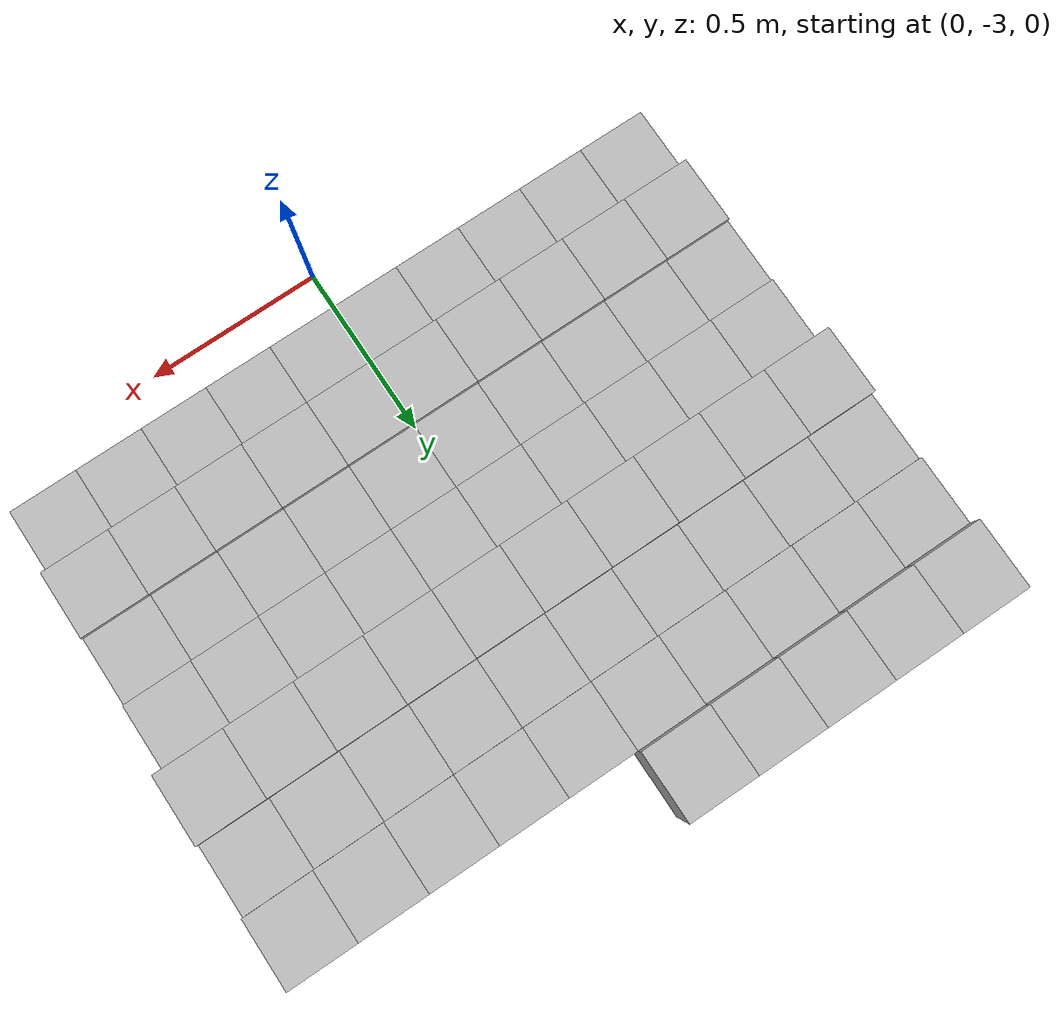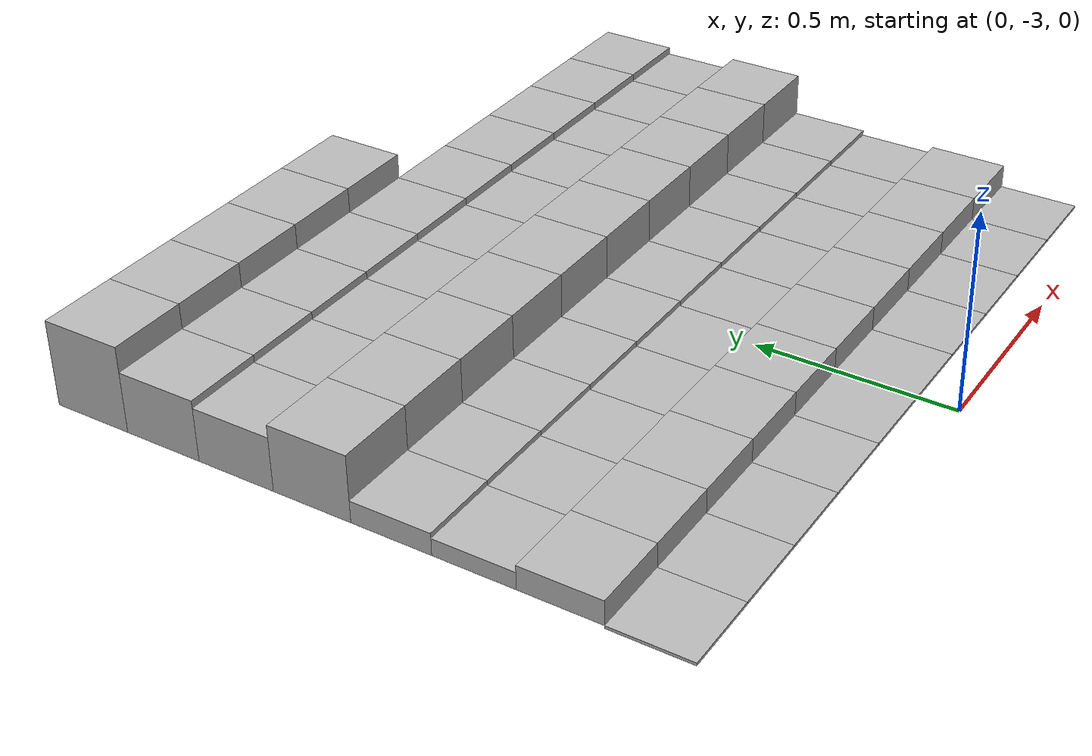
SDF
<sdf version="1.6">
 <model name="Terrain">
  <static>true</static>
  <link name="box_7_0">
   <pose>-0.9 -1.4 0.109469746065 0 0 0</pose>
   <inertial>
    <mass>1.0</mass>
    <inertia><ixx>0.0</ixx><ixy>0.0</ixy><ixz>0.0</ixz><iyy>0.0</iyy><iyz>0.0</iyz><izz>0.0</izz></inertia>
   </inertial>
   <collision name="collision"><geometry><box><size>0.2 0.2 0.21893949213</size></box></geometry></collision>
   <visual name="visual"><geometry><box><size>0.2 0.2 0.21893949213</size></box></geometry></visual>
  </link>
  <link name="box_7_1">
   <pose>-0.7 -1.4 0.109469746065 0 0 0</pose>
   <inertial>
    <mass>1.0</mass>
    <inertia><ixx>0.0</ixx><ixy>0.0</ixy><ixz>0.0</ixz><iyy>0.0</iyy><iyz>0.0</iyz><izz>0.0</izz></inertia>
   </inertial>
   <collision name="collision"><geometry><box><size>0.2 0.2 0.21893949213</size></box></geometry></collision>
   <visual name="visual"><geometry><box><size>0.2 0.2 0.21893949213</size></box></geometry></visual>
  </link>
  <link name="box_7_2">
   <pose>-0.5 -1.4 0.109469746065 0 0 0</pose>
   <inertial>
    <mass>1.0</mass>
    <inertia><ixx>0.0</ixx><ixy>0.0</ixy><ixz>0.0</ixz><iyy>0.0</iyy><iyz>0.0</iyz><izz>0.0</izz></inertia>
   </inertial>
   <collision name="collision"><geometry><box><size>0.2 0.2 0.21893949213</size></box></geometry></collision>
   <visual name="visual"><geometry><box><size>0.2 0.2 0.21893949213</size></box></geometry></visual>
  </link>
  <link name="box_7_3">
   <pose>-0.3 -1.4 0.109469746065 0 0 0</pose>
   <inertial>
    <mass>1.0</mass>
    <inertia><ixx>0.0</ixx><ixy>0.0</ixy><ixz>0.0</ixz><iyy>0.0</iyy><iyz>0.0</iyz><izz>0.0</izz></inertia>
   </inertial>
   <collision name="collision"><geometry><box><size>0.2 0.2 0.21893949213</size></box></geometry></collision>
   <visual name="visual"><geometry><box><size>0.2 0.2 0.21893949213</size></box></geometry></visual>
  </link>
  <link name="box_7_4">
   <pose>-0.1 -1.4 0.109469746065 0 0 0</pose>
   <inertial>
    <mass>1.0</mass>
    <inertia><ixx>0.0</ixx><ixy>0.0</ixy><ixz>0.0</ixz><iyy>0.0</iyy><iyz>0.0</iyz><izz>0.0</izz></inertia>
   </inertial>
   <collision name="collision"><geometry><box><size>0.2 0.2 0.21893949213</size></box></geometry></collision>
   <visual name="visual"><geometry><box><size>0.2 0.2 0.21893949213</size></box></geometry></visual>
  </link>
  <link name="box_8_0">
   <pose>-0.9 -1.6 0.0772948517465 0 0 0</pose>
   <inertial>
    <mass>1.0</mass>
    <inertia><ixx>0.0</ixx><ixy>0.0</ixy><ixz>0.0</ixz><iyy>0.0</iyy><iyz>0.0</iyz><izz>0.0</izz></inertia>
   </inertial>
   <collision name="collision"><geometry><box><size>0.2 0.2 0.154589703493</size></box></geometry></collision>
   <visual name="visual"><geometry><box><size>0.2 0.2 0.154589703493</size></box></geometry></visual>
  </link>
  <link name="box_8_1">
   <pose>-0.7 -1.6 0.0772948517465 0 0 0</pose>
   <inertial>
    <mass>1.0</mass>
    <inertia><ixx>0.0</ixx><ixy>0.0</ixy><ixz>0.0</ixz><iyy>0.0</iyy><iyz>0.0</iyz><izz>0.0</izz></inertia>
   </inertial>
   <collision name="collision"><geometry><box><size>0.2 0.2 0.154589703493</size></box></geometry></collision>
   <visual name="visual"><geometry><box><size>0.2 0.2 0.154589703493</size></box></geometry></visual>
  </link>
  <link name="box_8_2">
   <pose>-0.5 -1.6 0.0772948517465 0 0 0</pose>
   <inertial>
    <mass>1.0</mass>
    <inertia><ixx>0.0</ixx><ixy>0.0</ixy><ixz>0.0</ixz><iyy>0.0</iyy><iyz>0.0</iyz><izz>0.0</izz></inertia>
   </inertial>
   <collision name="collision"><geometry><box><size>0.2 0.2 0.154589703493</size></box></geometry></collision>
   <visual name="visual"><geometry><box><size>0.2 0.2 0.154589703493</size></box></geometry></visual>
  </link>
  <link name="box_8_3">
   <pose>-0.3 -1.6 0.0772948517465 0 0 0</pose>
   <inertial>
    <mass>1.0</mass>
    <inertia><ixx>0.0</ixx><ixy>0.0</ixy><ixz>0.0</ixz><iyy>0.0</iyy><iyz>0.0</iyz><izz>0.0</izz></inertia>
   </inertial>
   <collision name="collision"><geometry><box><size>0.2 0.2 0.154589703493</size></box></geometry></collision>
   <visual name="visual"><geometry><box><size>0.2 0.2 0.154589703493</size></box></geometry></visual>
  </link>
  <link name="box_8_4">
   <pose>-0.1 -1.6 0.0772948517465 0 0 0</pose>
   <inertial>
    <mass>1.0</mass>
    <inertia><ixx>0.0</ixx><ixy>0.0</ixy><ixz>0.0</ixz><iyy>0.0</iyy><iyz>0.0</iyz><izz>0.0</izz></inertia>
   </inertial>
   <collision name="collision"><geometry><box><size>0.2 0.2 0.154589703493</size></box></geometry></collision>
   <visual name="visual"><geometry><box><size>0.2 0.2 0.154589703493</size></box></geometry></visual>
  </link>
  <link name="box_8_5">
   <pose>0.1 -1.6 0.0772948517465 0 0 0</pose>
   <inertial>
    <mass>1.0</mass>
    <inertia><ixx>0.0</ixx><ixy>0.0</ixy><ixz>0.0</ixz><iyy>0.0</iyy><iyz>0.0</iyz><izz>0.0</izz></inertia>
   </inertial>
   <collision name="collision"><geometry><box><size>0.2 0.2 0.154589703493</size></box></geometry></collision>
   <visual name="visual"><geometry><box><size>0.2 0.2 0.154589703493</size></box></geometry></visual>
  </link>
  <link name="box_8_6">
   <pose>0.3 -1.6 0.0772948517465 0 0 0</pose>
   <inertial>
    <mass>1.0</mass>
    <inertia><ixx>0.0</ixx><ixy>0.0</ixy><ixz>0.0</ixz><iyy>0.0</iyy><iyz>0.0</iyz><izz>0.0</izz></inertia>
   </inertial>
   <collision name="collision"><geometry><box><size>0.2 0.2 0.154589703493</size></box></geometry></collision>
   <visual name="visual"><geometry><box><size>0.2 0.2 0.154589703493</size></box></geometry></visual>
  </link>
  <link name="box_8_7">
   <pose>0.5 -1.6 0.0772948517465 0 0 0</pose>
   <inertial>
    <mass>1.0</mass>
    <inertia><ixx>0.0</ixx><ixy>0.0</ixy><ixz>0.0</ixz><iyy>0.0</iyy><iyz>0.0</iyz><izz>0.0</izz></inertia>
   </inertial>
   <collision name="collision"><geometry><box><size>0.2 0.2 0.154589703493</size></box></geometry></collision>
   <visual name="visual"><geometry><box><size>0.2 0.2 0.154589703493</size></box></geometry></visual>
  </link>
  <link name="box_8_8">
   <pose>0.7 -1.6 0.0772948517465 0 0 0</pose>
   <inertial>
    <mass>1.0</mass>
    <inertia><ixx>0.0</ixx><ixy>0.0</ixy><ixz>0.0</ixz><iyy>0.0</iyy><iyz>0.0</iyz><izz>0.0</izz></inertia>
   </inertial>
   <collision name="collision"><geometry><box><size>0.2 0.2 0.154589703493</size></box></geometry></collision>
   <visual name="visual"><geometry><box><size>0.2 0.2 0.154589703493</size></box></geometry></visual>
  </link>
  <link name="box_8_9">
   <pose>0.9 -1.6 0.0772948517465 0 0 0</pose>
   <inertial>
    <mass>1.0</mass>
    <inertia><ixx>0.0</ixx><ixy>0.0</ixy><ixz>0.0</ixz><iyy>0.0</iyy><iyz>0.0</iyz><izz>0.0</izz></inertia>
   </inertial>
   <collision name="collision"><geometry><box><size>0.2 0.2 0.154589703493</size></box></geometry></collision>
   <visual name="visual"><geometry><box><size>0.2 0.2 0.154589703493</size></box></geometry></visual>
  </link>
  <link name="box_9_0">
   <pose>-0.9 -1.8 0.068009923661 0 0 0</pose>
   <inertial>
    <mass>1.0</mass>
    <inertia><ixx>0.0</ixx><ixy>0.0</ixy><ixz>0.0</ixz><iyy>0.0</iyy><iyz>0.0</iyz><izz>0.0</izz></inertia>
   </inertial>
   <collision name="collision"><geometry><box><size>0.2 0.2 0.136019847322</size></box></geometry></collision>
   <visual name="visual"><geometry><box><size>0.2 0.2 0.136019847322</size></box></geometry></visual>
  </link>
  <link name="box_9_1">
   <pose>-0.7 -1.8 0.068009923661 0 0 0</pose>
   <inertial>
    <mass>1.0</mass>
    <inertia><ixx>0.0</ixx><ixy>0.0</ixy><ixz>0.0</ixz><iyy>0.0</iyy><iyz>0.0</iyz><izz>0.0</izz></inertia>
   </inertial>
   <collision name="collision"><geometry><box><size>0.2 0.2 0.136019847322</size></box></geometry></collision>
   <visual name="visual"><geometry><box><size>0.2 0.2 0.136019847322</size></box></geometry></visual>
  </link>
  <link name="box_9_2">
   <pose>-0.5 -1.8 0.068009923661 0 0 0</pose>
   <inertial>
    <mass>1.0</mass>
    <inertia><ixx>0.0</ixx><ixy>0.0</ixy><ixz>0.0</ixz><iyy>0.0</iyy><iyz>0.0</iyz><izz>0.0</izz></inertia>
   </inertial>
   <collision name="collision"><geometry><box><size>0.2 0.2 0.136019847322</size></box></geometry></collision>
   <visual name="visual"><geometry><box><size>0.2 0.2 0.136019847322</size></box></geometry></visual>
  </link>
  <link name="box_9_3">
   <pose>-0.3 -1.8 0.068009923661 0 0 0</pose>
   <inertial>
    <mass>1.0</mass>
    <inertia><ixx>0.0</ixx><ixy>0.0</ixy><ixz>0.0</ixz><iyy>0.0</iyy><iyz>0.0</iyz><izz>0.0</izz></inertia>
   </inertial>
   <collision name="collision"><geometry><box><size>0.2 0.2 0.136019847322</size></box></geometry></collision>
   <visual name="visual"><geometry><box><size>0.2 0.2 0.136019847322</size></box></geometry></visual>
  </link>
  <link name="box_9_4">
   <pose>-0.1 -1.8 0.068009923661 0 0 0</pose>
   <inertial>
    <mass>1.0</mass>
    <inertia><ixx>0.0</ixx><ixy>0.0</ixy><ixz>0.0</ixz><iyy>0.0</iyy><iyz>0.0</iyz><izz>0.0</izz></inertia>
   </inertial>
   <collision name="collision"><geometry><box><size>0.2 0.2 0.136019847322</size></box></geometry></collision>
   <visual name="visual"><geometry><box><size>0.2 0.2 0.136019847322</size></box></geometry></visual>
  </link>
  <link name="box_9_5">
   <pose>0.1 -1.8 0.068009923661 0 0 0</pose>
   <inertial>
    <mass>1.0</mass>
    <inertia><ixx>0.0</ixx><ixy>0.0</ixy><ixz>0.0</ixz><iyy>0.0</iyy><iyz>0.0</iyz><izz>0.0</izz></inertia>
   </inertial>
   <collision name="collision"><geometry><box><size>0.2 0.2 0.136019847322</size></box></geometry></collision>
   <visual name="visual"><geometry><box><size>0.2 0.2 0.136019847322</size></box></geometry></visual>
  </link>
  <link name="box_9_6">
   <pose>0.3 -1.8 0.068009923661 0 0 0</pose>
   <inertial>
    <mass>1.0</mass>
    <inertia><ixx>0.0</ixx><ixy>0.0</ixy><ixz>0.0</ixz><iyy>0.0</iyy><iyz>0.0</iyz><izz>0.0</izz></inertia>
   </inertial>
   <collision name="collision"><geometry><box><size>0.2 0.2 0.136019847322</size></box></geometry></collision>
   <visual name="visual"><geometry><box><size>0.2 0.2 0.136019847322</size></box></geometry></visual>
  </link>
  <link name="box_9_7">
   <pose>0.5 -1.8 0.068009923661 0 0 0</pose>
   <inertial>
    <mass>1.0</mass>
    <inertia><ixx>0.0</ixx><ixy>0.0</ixy><ixz>0.0</ixz><iyy>0.0</iyy><iyz>0.0</iyz><izz>0.0</izz></inertia>
   </inertial>
   <collision name="collision"><geometry><box><size>0.2 0.2 0.136019847322</size></box></geometry></collision>
   <visual name="visual"><geometry><box><size>0.2 0.2 0.136019847322</size></box></geometry></visual>
  </link>
  <link name="box_9_8">
   <pose>0.7 -1.8 0.068009923661 0 0 0</pose>
   <inertial>
    <mass>1.0</mass>
    <inertia><ixx>0.0</ixx><ixy>0.0</ixy><ixz>0.0</ixz><iyy>0.0</iyy><iyz>0.0</iyz><izz>0.0</izz></inertia>
   </inertial>
   <collision name="collision"><geometry><box><size>0.2 0.2 0.136019847322</size></box></geometry></collision>
   <visual name="visual"><geometry><box><size>0.2 0.2 0.136019847322</size></box></geometry></visual>
  </link>
  <link name="box_9_9">
   <pose>0.9 -1.8 0.068009923661 0 0 0</pose>
   <inertial>
    <mass>1.0</mass>
    <inertia><ixx>0.0</ixx><ixy>0.0</ixy><ixz>0.0</ixz><iyy>0.0</iyy><iyz>0.0</iyz><izz>0.0</izz></inertia>
   </inertial>
   <collision name="collision"><geometry><box><size>0.2 0.2 0.136019847322</size></box></geometry></collision>
   <visual name="visual"><geometry><box><size>0.2 0.2 0.136019847322</size></box></geometry></visual>
  </link>
  <link name="box_10_0">
   <pose>-0.9 -2.0 0.0840015747643 0 0 0</pose>
   <inertial>
    <mass>1.0</mass>
    <inertia><ixx>0.0</ixx><ixy>0.0</ixy><ixz>0.0</ixz><iyy>0.0</iyy><iyz>0.0</iyz><izz>0.0</izz></inertia>
   </inertial>
   <collision name="collision"><geometry><box><size>0.2 0.2 0.168003149529</size></box></geometry></collision>
   <visual name="visual"><geometry><box><size>0.2 0.2 0.168003149529</size></box></geometry></visual>
  </link>
  <link name="box_10_1">
   <pose>-0.7 -2.0 0.0840015747643 0 0 0</pose>
   <inertial>
    <mass>1.0</mass>
    <inertia><ixx>0.0</ixx><ixy>0.0</ixy><ixz>0.0</ixz><iyy>0.0</iyy><iyz>0.0</iyz><izz>0.0</izz></inertia>
   </inertial>
   <collision name="collision"><geometry><box><size>0.2 0.2 0.168003149529</size></box></geometry></collision>
   <visual name="visual"><geometry><box><size>0.2 0.2 0.168003149529</size></box></geometry></visual>
  </link>
  <link name="box_10_2">
   <pose>-0.5 -2.0 0.0840015747643 0 0 0</pose>
   <inertial>
    <mass>1.0</mass>
    <inertia><ixx>0.0</ixx><ixy>0.0</ixy><ixz>0.0</ixz><iyy>0.0</iyy><iyz>0.0</iyz><izz>0.0</izz></inertia>
   </inertial>
   <collision name="collision"><geometry><box><size>0.2 0.2 0.168003149529</size></box></geometry></collision>
   <visual name="visual"><geometry><box><size>0.2 0.2 0.168003149529</size></box></geometry></visual>
  </link>
  <link name="box_10_3">
   <pose>-0.3 -2.0 0.0840015747643 0 0 0</pose>
   <inertial>
    <mass>1.0</mass>
    <inertia><ixx>0.0</ixx><ixy>0.0</ixy><ixz>0.0</ixz><iyy>0.0</iyy><iyz>0.0</iyz><izz>0.0</izz></inertia>
   </inertial>
   <collision name="collision"><geometry><box><size>0.2 0.2 0.168003149529</size></box></geometry></collision>
   <visual name="visual"><geometry><box><size>0.2 0.2 0.168003149529</size></box></geometry></visual>
  </link>
  <link name="box_10_4">
   <pose>-0.1 -2.0 0.0840015747643 0 0 0</pose>
   <inertial>
    <mass>1.0</mass>
    <inertia><ixx>0.0</ixx><ixy>0.0</ixy><ixz>0.0</ixz><iyy>0.0</iyy><iyz>0.0</iyz><izz>0.0</izz></inertia>
   </inertial>
   <collision name="collision"><geometry><box><size>0.2 0.2 0.168003149529</size></box></geometry></collision>
   <visual name="visual"><geometry><box><size>0.2 0.2 0.168003149529</size></box></geometry></visual>
  </link>
  <link name="box_10_5">
   <pose>0.1 -2.0 0.0840015747643 0 0 0</pose>
   <inertial>
    <mass>1.0</mass>
    <inertia><ixx>0.0</ixx><ixy>0.0</ixy><ixz>0.0</ixz><iyy>0.0</iyy><iyz>0.0</iyz><izz>0.0</izz></inertia>
   </inertial>
   <collision name="collision"><geometry><box><size>0.2 0.2 0.168003149529</size></box></geometry></collision>
   <visual name="visual"><geometry><box><size>0.2 0.2 0.168003149529</size></box></geometry></visual>
  </link>
  <link name="box_10_6">
   <pose>0.3 -2.0 0.0840015747643 0 0 0</pose>
   <inertial>
    <mass>1.0</mass>
    <inertia><ixx>0.0</ixx><ixy>0.0</ixy><ixz>0.0</ixz><iyy>0.0</iyy><iyz>0.0</iyz><izz>0.0</izz></inertia>
   </inertial>
   <collision name="collision"><geometry><box><size>0.2 0.2 0.168003149529</size></box></geometry></collision>
   <visual name="visual"><geometry><box><size>0.2 0.2 0.168003149529</size></box></geometry></visual>
  </link>
  <link name="box_10_7">
   <pose>0.5 -2.0 0.0840015747643 0 0 0</pose>
   <inertial>
    <mass>1.0</mass>
    <inertia><ixx>0.0</ixx><ixy>0.0</ixy><ixz>0.0</ixz><iyy>0.0</iyy><iyz>0.0</iyz><izz>0.0</izz></inertia>
   </inertial>
   <collision name="collision"><geometry><box><size>0.2 0.2 0.168003149529</size></box></geometry></collision>
   <visual name="visual"><geometry><box><size>0.2 0.2 0.168003149529</size></box></geometry></visual>
  </link>
  <link name="box_10_8">
   <pose>0.7 -2.0 0.0840015747643 0 0 0</pose>
   <inertial>
    <mass>1.0</mass>
    <inertia><ixx>0.0</ixx><ixy>0.0</ixy><ixz>0.0</ixz><iyy>0.0</iyy><iyz>0.0</iyz><izz>0.0</izz></inertia>
   </inertial>
   <collision name="collision"><geometry><box><size>0.2 0.2 0.168003149529</size></box></geometry></collision>
   <visual name="visual"><geometry><box><size>0.2 0.2 0.168003149529</size></box></geometry></visual>
  </link>
  <link name="box_10_9">
   <pose>0.9 -2.0 0.0840015747643 0 0 0</pose>
   <inertial>
    <mass>1.0</mass>
    <inertia><ixx>0.0</ixx><ixy>0.0</ixy><ixz>0.0</ixz><iyy>0.0</iyy><iyz>0.0</iyz><izz>0.0</izz></inertia>
   </inertial>
   <collision name="collision"><geometry><box><size>0.2 0.2 0.168003149529</size></box></geometry></collision>
   <visual name="visual"><geometry><box><size>0.2 0.2 0.168003149529</size></box></geometry></visual>
  </link>
  <link name="box_11_0">
   <pose>-0.9 -2.2 0.027829892472 0 0 0</pose>
   <inertial>
    <mass>1.0</mass>
    <inertia><ixx>0.0</ixx><ixy>0.0</ixy><ixz>0.0</ixz><iyy>0.0</iyy><iyz>0.0</iyz><izz>0.0</izz></inertia>
   </inertial>
   <collision name="collision"><geometry><box><size>0.2 0.2 0.055659784944</size></box></geometry></collision>
   <visual name="visual"><geometry><box><size>0.2 0.2 0.055659784944</size></box></geometry></visual>
  </link>
  <link name="box_11_1">
   <pose>-0.7 -2.2 0.027829892472 0 0 0</pose>
   <inertial>
    <mass>1.0</mass>
    <inertia><ixx>0.0</ixx><ixy>0.0</ixy><ixz>0.0</ixz><iyy>0.0</iyy><iyz>0.0</iyz><izz>0.0</izz></inertia>
   </inertial>
   <collision name="collision"><geometry><box><size>0.2 0.2 0.055659784944</size></box></geometry></collision>
   <visual name="visual"><geometry><box><size>0.2 0.2 0.055659784944</size></box></geometry></visual>
  </link>
  <link name="box_11_2">
   <pose>-0.5 -2.2 0.027829892472 0 0 0</pose>
   <inertial>
    <mass>1.0</mass>
    <inertia><ixx>0.0</ixx><ixy>0.0</ixy><ixz>0.0</ixz><iyy>0.0</iyy><iyz>0.0</iyz><izz>0.0</izz></inertia>
   </inertial>
   <collision name="collision"><geometry><box><size>0.2 0.2 0.055659784944</size></box></geometry></collision>
   <visual name="visual"><geometry><box><size>0.2 0.2 0.055659784944</size></box></geometry></visual>
  </link>
  <link name="box_11_3">
   <pose>-0.3 -2.2 0.027829892472 0 0 0</pose>
   <inertial>
    <mass>1.0</mass>
    <inertia><ixx>0.0</ixx><ixy>0.0</ixy><ixz>0.0</ixz><iyy>0.0</iyy><iyz>0.0</iyz><izz>0.0</izz></inertia>
   </inertial>
   <collision name="collision"><geometry><box><size>0.2 0.2 0.055659784944</size></box></geometry></collision>
   <visual name="visual"><geometry><box><size>0.2 0.2 0.055659784944</size></box></geometry></visual>
  </link>
  <link name="box_11_4">
   <pose>-0.1 -2.2 0.027829892472 0 0 0</pose>
   <inertial>
    <mass>1.0</mass>
    <inertia><ixx>0.0</ixx><ixy>0.0</ixy><ixz>0.0</ixz><iyy>0.0</iyy><iyz>0.0</iyz><izz>0.0</izz></inertia>
   </inertial>
   <collision name="collision"><geometry><box><size>0.2 0.2 0.055659784944</size></box></geometry></collision>
   <visual name="visual"><geometry><box><size>0.2 0.2 0.055659784944</size></box></geometry></visual>
  </link>
  <link name="box_11_5">
   <pose>0.1 -2.2 0.027829892472 0 0 0</pose>
   <inertial>
    <mass>1.0</mass>
    <inertia><ixx>0.0</ixx><ixy>0.0</ixy><ixz>0.0</ixz><iyy>0.0</iyy><iyz>0.0</iyz><izz>0.0</izz></inertia>
   </inertial>
   <collision name="collision"><geometry><box><size>0.2 0.2 0.055659784944</size></box></geometry></collision>
   <visual name="visual"><geometry><box><size>0.2 0.2 0.055659784944</size></box></geometry></visual>
  </link>
  <link name="box_11_6">
   <pose>0.3 -2.2 0.027829892472 0 0 0</pose>
   <inertial>
    <mass>1.0</mass>
    <inertia><ixx>0.0</ixx><ixy>0.0</ixy><ixz>0.0</ixz><iyy>0.0</iyy><iyz>0.0</iyz><izz>0.0</izz></inertia>
   </inertial>
   <collision name="collision"><geometry><box><size>0.2 0.2 0.055659784944</size></box></geometry></collision>
   <visual name="visual"><geometry><box><size>0.2 0.2 0.055659784944</size></box></geometry></visual>
  </link>
  <link name="box_11_7">
   <pose>0.5 -2.2 0.027829892472 0 0 0</pose>
   <inertial>
    <mass>1.0</mass>
    <inertia><ixx>0.0</ixx><ixy>0.0</ixy><ixz>0.0</ixz><iyy>0.0</iyy><iyz>0.0</iyz><izz>0.0</izz></inertia>
   </inertial>
   <collision name="collision"><geometry><box><size>0.2 0.2 0.055659784944</size></box></geometry></collision>
   <visual name="visual"><geometry><box><size>0.2 0.2 0.055659784944</size></box></geometry></visual>
  </link>
  <link name="box_11_8">
   <pose>0.7 -2.2 0.027829892472 0 0 0</pose>
   <inertial>
    <mass>1.0</mass>
    <inertia><ixx>0.0</ixx><ixy>0.0</ixy><ixz>0.0</ixz><iyy>0.0</iyy><iyz>0.0</iyz><izz>0.0</izz></inertia>
   </inertial>
   <collision name="collision"><geometry><box><size>0.2 0.2 0.055659784944</size></box></geometry></collision>
   <visual name="visual"><geometry><box><size>0.2 0.2 0.055659784944</size></box></geometry></visual>
  </link>
  <link name="box_11_9">
   <pose>0.9 -2.2 0.027829892472 0 0 0</pose>
   <inertial>
    <mass>1.0</mass>
    <inertia><ixx>0.0</ixx><ixy>0.0</ixy><ixz>0.0</ixz><iyy>0.0</iyy><iyz>0.0</iyz><izz>0.0</izz></inertia>
   </inertial>
   <collision name="collision"><geometry><box><size>0.2 0.2 0.055659784944</size></box></geometry></collision>
   <visual name="visual"><geometry><box><size>0.2 0.2 0.055659784944</size></box></geometry></visual>
  </link>
  <link name="box_12_0">
   <pose>-0.9 -2.4 0.0215448647986 0 0 0</pose>
   <inertial>
    <mass>1.0</mass>
    <inertia><ixx>0.0</ixx><ixy>0.0</ixy><ixz>0.0</ixz><iyy>0.0</iyy><iyz>0.0</iyz><izz>0.0</izz></inertia>
   </inertial>
   <collision name="collision"><geometry><box><size>0.2 0.2 0.0430897295971</size></box></geometry></collision>
   <visual name="visual"><geometry><box><size>0.2 0.2 0.0430897295971</size></box></geometry></visual>
  </link>
  <link name="box_12_1">
   <pose>-0.7 -2.4 0.0215448647986 0 0 0</pose>
   <inertial>
    <mass>1.0</mass>
    <inertia><ixx>0.0</ixx><ixy>0.0</ixy><ixz>0.0</ixz><iyy>0.0</iyy><iyz>0.0</iyz><izz>0.0</izz></inertia>
   </inertial>
   <collision name="collision"><geometry><box><size>0.2 0.2 0.0430897295971</size></box></geometry></collision>
   <visual name="visual"><geometry><box><size>0.2 0.2 0.0430897295971</size></box></geometry></visual>
  </link>
  <link name="box_12_2">
   <pose>-0.5 -2.4 0.0215448647986 0 0 0</pose>
   <inertial>
    <mass>1.0</mass>
    <inertia><ixx>0.0</ixx><ixy>0.0</ixy><ixz>0.0</ixz><iyy>0.0</iyy><iyz>0.0</iyz><izz>0.0</izz></inertia>
   </inertial>
   <collision name="collision"><geometry><box><size>0.2 0.2 0.0430897295971</size></box></geometry></collision>
   <visual name="visual"><geometry><box><size>0.2 0.2 0.0430897295971</size></box></geometry></visual>
  </link>
  <link name="box_12_3">
   <pose>-0.3 -2.4 0.0215448647986 0 0 0</pose>
   <inertial>
    <mass>1.0</mass>
    <inertia><ixx>0.0</ixx><ixy>0.0</ixy><ixz>0.0</ixz><iyy>0.0</iyy><iyz>0.0</iyz><izz>0.0</izz></inertia>
   </inertial>
   <collision name="collision"><geometry><box><size>0.2 0.2 0.0430897295971</size></box></geometry></collision>
   <visual name="visual"><geometry><box><size>0.2 0.2 0.0430897295971</size></box></geometry></visual>
  </link>
  <link name="box_12_4">
   <pose>-0.1 -2.4 0.0215448647986 0 0 0</pose>
   <inertial>
    <mass>1.0</mass>
    <inertia><ixx>0.0</ixx><ixy>0.0</ixy><ixz>0.0</ixz><iyy>0.0</iyy><iyz>0.0</iyz><izz>0.0</izz></inertia>
   </inertial>
   <collision name="collision"><geometry><box><size>0.2 0.2 0.0430897295971</size></box></geometry></collision>
   <visual name="visual"><geometry><box><size>0.2 0.2 0.0430897295971</size></box></geometry></visual>
  </link>
  <link name="box_12_5">
   <pose>0.1 -2.4 0.0215448647986 0 0 0</pose>
   <inertial>
    <mass>1.0</mass>
    <inertia><ixx>0.0</ixx><ixy>0.0</ixy><ixz>0.0</ixz><iyy>0.0</iyy><iyz>0.0</iyz><izz>0.0</izz></inertia>
   </inertial>
   <collision name="collision"><geometry><box><size>0.2 0.2 0.0430897295971</size></box></geometry></collision>
   <visual name="visual"><geometry><box><size>0.2 0.2 0.0430897295971</size></box></geometry></visual>
  </link>
  <link name="box_12_6">
   <pose>0.3 -2.4 0.0215448647986 0 0 0</pose>
   <inertial>
    <mass>1.0</mass>
    <inertia><ixx>0.0</ixx><ixy>0.0</ixy><ixz>0.0</ixz><iyy>0.0</iyy><iyz>0.0</iyz><izz>0.0</izz></inertia>
   </inertial>
   <collision name="collision"><geometry><box><size>0.2 0.2 0.0430897295971</size></box></geometry></collision>
   <visual name="visual"><geometry><box><size>0.2 0.2 0.0430897295971</size></box></geometry></visual>
  </link>
  <link name="box_12_7">
   <pose>0.5 -2.4 0.0215448647986 0 0 0</pose>
   <inertial>
    <mass>1.0</mass>
    <inertia><ixx>0.0</ixx><ixy>0.0</ixy><ixz>0.0</ixz><iyy>0.0</iyy><iyz>0.0</iyz><izz>0.0</izz></inertia>
   </inertial>
   <collision name="collision"><geometry><box><size>0.2 0.2 0.0430897295971</size></box></geometry></collision>
   <visual name="visual"><geometry><box><size>0.2 0.2 0.0430897295971</size></box></geometry></visual>
  </link>
  <link name="box_12_8">
   <pose>0.7 -2.4 0.0215448647986 0 0 0</pose>
   <inertial>
    <mass>1.0</mass>
    <inertia><ixx>0.0</ixx><ixy>0.0</ixy><ixz>0.0</ixz><iyy>0.0</iyy><iyz>0.0</iyz><izz>0.0</izz></inertia>
   </inertial>
   <collision name="collision"><geometry><box><size>0.2 0.2 0.0430897295971</size></box></geometry></collision>
   <visual name="visual"><geometry><box><size>0.2 0.2 0.0430897295971</size></box></geometry></visual>
  </link>
  <link name="box_12_9">
   <pose>0.9 -2.4 0.0215448647986 0 0 0</pose>
   <inertial>
    <mass>1.0</mass>
    <inertia><ixx>0.0</ixx><ixy>0.0</ixy><ixz>0.0</ixz><iyy>0.0</iyy><iyz>0.0</iyz><izz>0.0</izz></inertia>
   </inertial>
   <collision name="collision"><geometry><box><size>0.2 0.2 0.0430897295971</size></box></geometry></collision>
   <visual name="visual"><geometry><box><size>0.2 0.2 0.0430897295971</size></box></geometry></visual>
  </link>
  <link name="box_13_0">
   <pose>-0.9 -2.6 0.0303343461176 0 0 0</pose>
   <inertial>
    <mass>1.0</mass>
    <inertia><ixx>0.0</ixx><ixy>0.0</ixy><ixz>0.0</ixz><iyy>0.0</iyy><iyz>0.0</iyz><izz>0.0</izz></inertia>
   </inertial>
   <collision name="collision"><geometry><box><size>0.2 0.2 0.0606686922352</size></box></geometry></collision>
   <visual name="visual"><geometry><box><size>0.2 0.2 0.0606686922352</size></box></geometry></visual>
  </link>
  <link name="box_13_1">
   <pose>-0.7 -2.6 0.0303343461176 0 0 0</pose>
   <inertial>
    <mass>1.0</mass>
    <inertia><ixx>0.0</ixx><ixy>0.0</ixy><ixz>0.0</ixz><iyy>0.0</iyy><iyz>0.0</iyz><izz>0.0</izz></inertia>
   </inertial>
   <collision name="collision"><geometry><box><size>0.2 0.2 0.0606686922352</size></box></geometry></collision>
   <visual name="visual"><geometry><box><size>0.2 0.2 0.0606686922352</size></box></geometry></visual>
  </link>
  <link name="box_13_2">
   <pose>-0.5 -2.6 0.0303343461176 0 0 0</pose>
   <inertial>
    <mass>1.0</mass>
    <inertia><ixx>0.0</ixx><ixy>0.0</ixy><ixz>0.0</ixz><iyy>0.0</iyy><iyz>0.0</iyz><izz>0.0</izz></inertia>
   </inertial>
   <collision name="collision"><geometry><box><size>0.2 0.2 0.0606686922352</size></box></geometry></collision>
   <visual name="visual"><geometry><box><size>0.2 0.2 0.0606686922352</size></box></geometry></visual>
  </link>
  <link name="box_13_3">
   <pose>-0.3 -2.6 0.0303343461176 0 0 0</pose>
   <inertial>
    <mass>1.0</mass>
    <inertia><ixx>0.0</ixx><ixy>0.0</ixy><ixz>0.0</ixz><iyy>0.0</iyy><iyz>0.0</iyz><izz>0.0</izz></inertia>
   </inertial>
   <collision name="collision"><geometry><box><size>0.2 0.2 0.0606686922352</size></box></geometry></collision>
   <visual name="visual"><geometry><box><size>0.2 0.2 0.0606686922352</size></box></geometry></visual>
  </link>
  <link name="box_13_4">
   <pose>-0.1 -2.6 0.0303343461176 0 0 0</pose>
   <inertial>
    <mass>1.0</mass>
    <inertia><ixx>0.0</ixx><ixy>0.0</ixy><ixz>0.0</ixz><iyy>0.0</iyy><iyz>0.0</iyz><izz>0.0</izz></inertia>
   </inertial>
   <collision name="collision"><geometry><box><size>0.2 0.2 0.0606686922352</size></box></geometry></collision>
   <visual name="visual"><geometry><box><size>0.2 0.2 0.0606686922352</size></box></geometry></visual>
  </link>
  <link name="box_13_5">
   <pose>0.1 -2.6 0.0303343461176 0 0 0</pose>
   <inertial>
    <mass>1.0</mass>
    <inertia><ixx>0.0</ixx><ixy>0.0</ixy><ixz>0.0</ixz><iyy>0.0</iyy><iyz>0.0</iyz><izz>0.0</izz></inertia>
   </inertial>
   <collision name="collision"><geometry><box><size>0.2 0.2 0.0606686922352</size></box></geometry></collision>
   <visual name="visual"><geometry><box><size>0.2 0.2 0.0606686922352</size></box></geometry></visual>
  </link>
  <link name="box_13_6">
   <pose>0.3 -2.6 0.0303343461176 0 0 0</pose>
   <inertial>
    <mass>1.0</mass>
    <inertia><ixx>0.0</ixx><ixy>0.0</ixy><ixz>0.0</ixz><iyy>0.0</iyy><iyz>0.0</iyz><izz>0.0</izz></inertia>
   </inertial>
   <collision name="collision"><geometry><box><size>0.2 0.2 0.0606686922352</size></box></geometry></collision>
   <visual name="visual"><geometry><box><size>0.2 0.2 0.0606686922352</size></box></geometry></visual>
  </link>
  <link name="box_13_7">
   <pose>0.5 -2.6 0.0303343461176 0 0 0</pose>
   <inertial>
    <mass>1.0</mass>
    <inertia><ixx>0.0</ixx><ixy>0.0</ixy><ixz>0.0</ixz><iyy>0.0</iyy><iyz>0.0</iyz><izz>0.0</izz></inertia>
   </inertial>
   <collision name="collision"><geometry><box><size>0.2 0.2 0.0606686922352</size></box></geometry></collision>
   <visual name="visual"><geometry><box><size>0.2 0.2 0.0606686922352</size></box></geometry></visual>
  </link>
  <link name="box_13_8">
   <pose>0.7 -2.6 0.0303343461176 0 0 0</pose>
   <inertial>
    <mass>1.0</mass>
    <inertia><ixx>0.0</ixx><ixy>0.0</ixy><ixz>0.0</ixz><iyy>0.0</iyy><iyz>0.0</iyz><izz>0.0</izz></inertia>
   </inertial>
   <collision name="collision"><geometry><box><size>0.2 0.2 0.0606686922352</size></box></geometry></collision>
   <visual name="visual"><geometry><box><size>0.2 0.2 0.0606686922352</size></box></geometry></visual>
  </link>
  <link name="box_13_9">
   <pose>0.9 -2.6 0.0303343461176 0 0 0</pose>
   <inertial>
    <mass>1.0</mass>
    <inertia><ixx>0.0</ixx><ixy>0.0</ixy><ixz>0.0</ixz><iyy>0.0</iyy><iyz>0.0</iyz><izz>0.0</izz></inertia>
   </inertial>
   <collision name="collision"><geometry><box><size>0.2 0.2 0.0606686922352</size></box></geometry></collision>
   <visual name="visual"><geometry><box><size>0.2 0.2 0.0606686922352</size></box></geometry></visual>
  </link>
  <link name="box_14_0">
   <pose>-0.9 -2.8 -0.00361831323975 0 0 0</pose>
   <inertial>
    <mass>1.0</mass>
    <inertia><ixx>0.0</ixx><ixy>0.0</ixy><ixz>0.0</ixz><iyy>0.0</iyy><iyz>0.0</iyz><izz>0.0</izz></inertia>
   </inertial>
   <collision name="collision"><geometry><box><size>0.2 0.2 -0.00723662647949</size></box></geometry></collision>
   <visual name="visual"><geometry><box><size>0.2 0.2 -0.00723662647949</size></box></geometry></visual>
  </link>
  <link name="box_14_1">
   <pose>-0.7 -2.8 -0.00361831323975 0 0 0</pose>
   <inertial>
    <mass>1.0</mass>
    <inertia><ixx>0.0</ixx><ixy>0.0</ixy><ixz>0.0</ixz><iyy>0.0</iyy><iyz>0.0</iyz><izz>0.0</izz></inertia>
   </inertial>
   <collision name="collision"><geometry><box><size>0.2 0.2 -0.00723662647949</size></box></geometry></collision>
   <visual name="visual"><geometry><box><size>0.2 0.2 -0.00723662647949</size></box></geometry></visual>
  </link>
  <link name="box_14_2">
   <pose>-0.5 -2.8 -0.00361831323975 0 0 0</pose>
   <inertial>
    <mass>1.0</mass>
    <inertia><ixx>0.0</ixx><ixy>0.0</ixy><ixz>0.0</ixz><iyy>0.0</iyy><iyz>0.0</iyz><izz>0.0</izz></inertia>
   </inertial>
   <collision name="collision"><geometry><box><size>0.2 0.2 -0.00723662647949</size></box></geometry></collision>
   <visual name="visual"><geometry><box><size>0.2 0.2 -0.00723662647949</size></box></geometry></visual>
  </link>
  <link name="box_14_3">
   <pose>-0.3 -2.8 -0.00361831323975 0 0 0</pose>
   <inertial>
    <mass>1.0</mass>
    <inertia><ixx>0.0</ixx><ixy>0.0</ixy><ixz>0.0</ixz><iyy>0.0</iyy><iyz>0.0</iyz><izz>0.0</izz></inertia>
   </inertial>
   <collision name="collision"><geometry><box><size>0.2 0.2 -0.00723662647949</size></box></geometry></collision>
   <visual name="visual"><geometry><box><size>0.2 0.2 -0.00723662647949</size></box></geometry></visual>
  </link>
  <link name="box_14_4">
   <pose>-0.1 -2.8 -0.00361831323975 0 0 0</pose>
   <inertial>
    <mass>1.0</mass>
    <inertia><ixx>0.0</ixx><ixy>0.0</ixy><ixz>0.0</ixz><iyy>0.0</iyy><iyz>0.0</iyz><izz>0.0</izz></inertia>
   </inertial>
   <collision name="collision"><geometry><box><size>0.2 0.2 -0.00723662647949</size></box></geometry></collision>
   <visual name="visual"><geometry><box><size>0.2 0.2 -0.00723662647949</size></box></geometry></visual>
  </link>
  <link name="box_14_5">
   <pose>0.1 -2.8 -0.00361831323975 0 0 0</pose>
   <inertial>
    <mass>1.0</mass>
    <inertia><ixx>0.0</ixx><ixy>0.0</ixy><ixz>0.0</ixz><iyy>0.0</iyy><iyz>0.0</iyz><izz>0.0</izz></inertia>
   </inertial>
   <collision name="collision"><geometry><box><size>0.2 0.2 -0.00723662647949</size></box></geometry></collision>
   <visual name="visual"><geometry><box><size>0.2 0.2 -0.00723662647949</size></box></geometry></visual>
  </link>
  <link name="box_14_6">
   <pose>0.3 -2.8 -0.00361831323975 0 0 0</pose>
   <inertial>
    <mass>1.0</mass>
    <inertia><ixx>0.0</ixx><ixy>0.0</ixy><ixz>0.0</ixz><iyy>0.0</iyy><iyz>0.0</iyz><izz>0.0</izz></inertia>
   </inertial>
   <collision name="collision"><geometry><box><size>0.2 0.2 -0.00723662647949</size></box></geometry></collision>
   <visual name="visual"><geometry><box><size>0.2 0.2 -0.00723662647949</size></box></geometry></visual>
  </link>
  <link name="box_14_7">
   <pose>0.5 -2.8 -0.00361831323975 0 0 0</pose>
   <inertial>
    <mass>1.0</mass>
    <inertia><ixx>0.0</ixx><ixy>0.0</ixy><ixz>0.0</ixz><iyy>0.0</iyy><iyz>0.0</iyz><izz>0.0</izz></inertia>
   </inertial>
   <collision name="collision"><geometry><box><size>0.2 0.2 -0.00723662647949</size></box></geometry></collision>
   <visual name="visual"><geometry><box><size>0.2 0.2 -0.00723662647949</size></box></geometry></visual>
  </link>
  <link name="box_14_8">
   <pose>0.7 -2.8 -0.00361831323975 0 0 0</pose>
   <inertial>
    <mass>1.0</mass>
    <inertia><ixx>0.0</ixx><ixy>0.0</ixy><ixz>0.0</ixz><iyy>0.0</iyy><iyz>0.0</iyz><izz>0.0</izz></inertia>
   </inertial>
   <collision name="collision"><geometry><box><size>0.2 0.2 -0.00723662647949</size></box></geometry></collision>
   <visual name="visual"><geometry><box><size>0.2 0.2 -0.00723662647949</size></box></geometry></visual>
  </link>
  <link name="box_14_9">
   <pose>0.9 -2.8 -0.00361831323975 0 0 0</pose>
   <inertial>
    <mass>1.0</mass>
    <inertia><ixx>0.0</ixx><ixy>0.0</ixy><ixz>0.0</ixz><iyy>0.0</iyy><iyz>0.0</iyz><izz>0.0</izz></inertia>
   </inertial>
   <collision name="collision"><geometry><box><size>0.2 0.2 -0.00723662647949</size></box></geometry></collision>
   <visual name="visual"><geometry><box><size>0.2 0.2 -0.00723662647949</size></box></geometry></visual>
  </link>
 </model>
</sdf>
